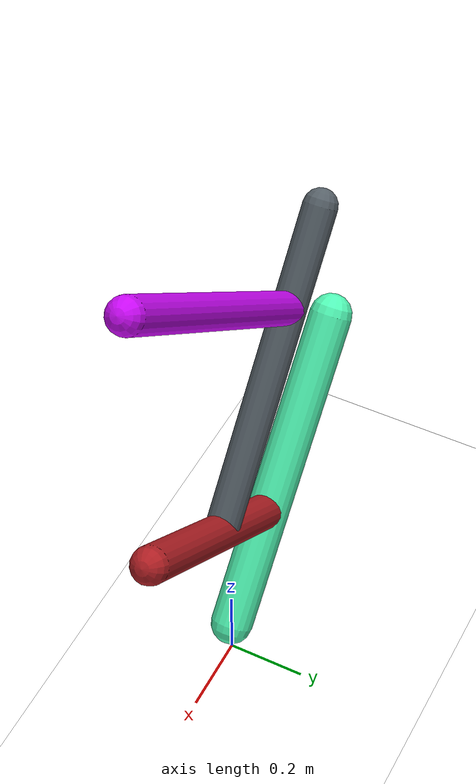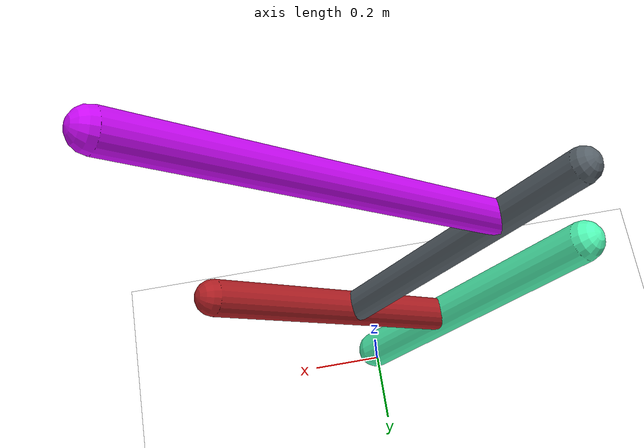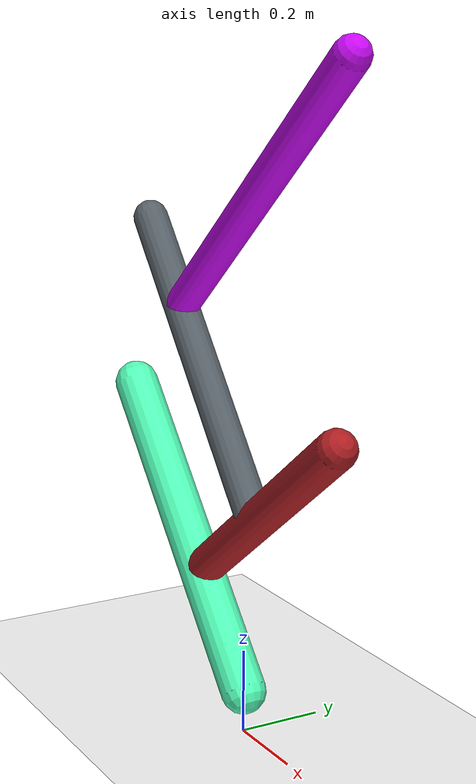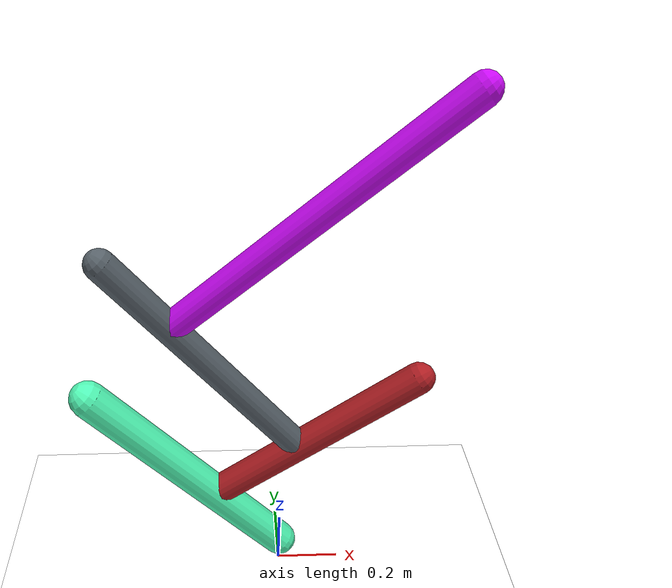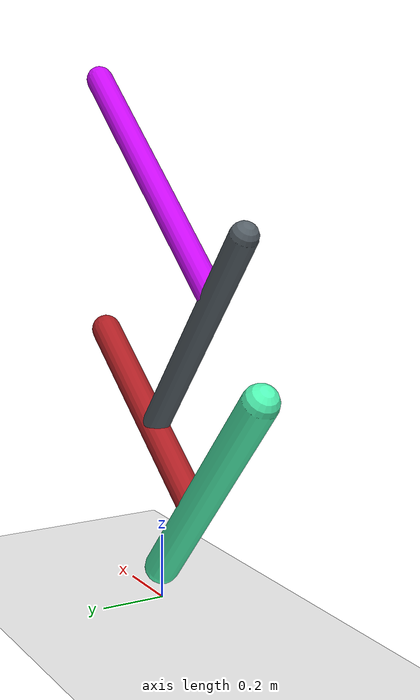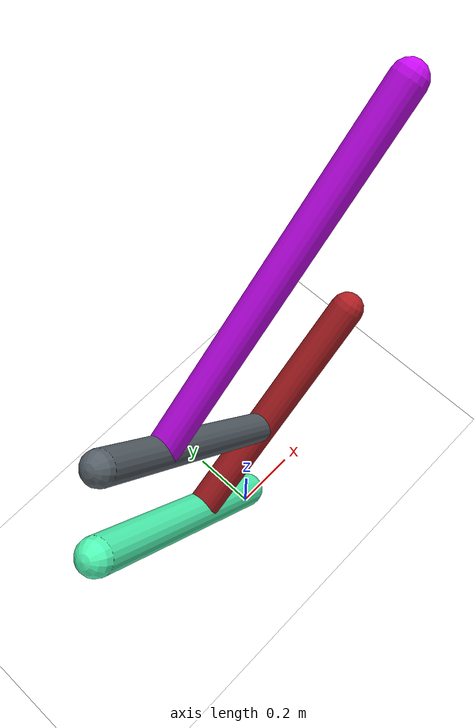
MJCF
<mujoco model="morphology">
  <option timestep="0.01"/>
  <default>
    <default class="/"/>
  </default>
  <asset>
    <texture name="texplane" type="2d" builtin="checker" rgb1="0.1 0.2 0.3" rgb2="0.2 0.3 0.4" width="300" height="300"/>
    <material name="MatPlane" class="/" texture="texplane" texrepeat="20 20" specular="1" shininess="1" reflectance="0.5"/>
  </asset>
  <worldbody>
    <light name="//unnamed_light_0" class="/" directional="true" pos="0 0 1.5" dir="0 0 -1.3" cutoff="1e+02" exponent="1" diffuse="1 1 1" specular="0.1 0.1 0.1"/>
    <geom name="ground" class="/" type="plane" size="15 15 0.5" material="MatPlane" rgba="1 1 1 1"/>
    <body name="body" pos="0 0 0.1">
      <geom name="geom0" class="/" type="capsule" contype="1" conaffinity="1" condim="3" size="0.054" rgba="0.32 0.99 0.72 1" friction="0.4 0.1 0.1" fromto="0 0 0 -0.55 0 0.63"/>
      <body name="body1" pos="-0.2 0 0.24">
        <geom name="geom1" class="/" type="capsule" contype="1" conaffinity="1" condim="3" size="0.046" rgba="0.69 0.12 0.14 1" friction="0.4 0.1 0.1" fromto="0 0 0 0.58 0 0.44"/>
        <body name="body2" pos="0.25 0 0.19">
          <geom name="geom2" class="/" type="capsule" contype="1" conaffinity="1" condim="3" size="0.042" rgba="0.34 0.38 0.41 1" friction="0.4 0.1 0.1" fromto="0 0 0 -0.51 0 0.63"/>
          <body name="body3" pos="-0.35 0 0.44">
            <geom name="geom3" class="/" type="capsule" contype="1" conaffinity="1" condim="3" size="0.041" rgba="0.8 0.035 0.97 1" friction="0.4 0.1 0.1" fromto="0 0 0 0.71 0 0.6"/>
            <joint name="joint3" class="/" type="hinge" axis="0 1 0" limited="true" stiffness="20" range="-57 57" armature="0.1" damping="2"/>
          </body>
          <joint name="joint2" class="/" type="hinge" axis="0 1 0" limited="true" stiffness="20" range="-58 58" armature="0.1" damping="2"/>
        </body>
        <joint name="joint1" class="/" type="hinge" axis="0 1 0" limited="true" stiffness="20" range="-35 35" armature="0.1" damping="2"/>
      </body>
      <joint name="rootx" class="/" type="slide" axis="1 0 0" limited="false" stiffness="0" armature="0" damping="0"/>
      <joint name="rootz" class="/" type="slide" axis="0 0 1" limited="false" stiffness="0" armature="0" damping="0"/>
      <joint name="rooty" class="/" type="hinge" axis="0 1 0" limited="false" stiffness="0" armature="0" damping="0"/>
    </body>
  </worldbody>
  <actuator>
    <motor name="motor3" class="/" ctrllimited="true" ctrlrange="-1 1" gear="1.3e+02" joint="joint3"/>
    <motor name="motor2" class="/" ctrllimited="true" ctrlrange="-1 1" gear="1.1e+02" joint="joint2"/>
    <motor name="motor1" class="/" ctrllimited="true" ctrlrange="-1 1" gear="1.5e+02" joint="joint1"/>
  </actuator>
  <sensor>
    <subtreelinvel name="velocity" body="body"/>
  </sensor>
</mujoco>
